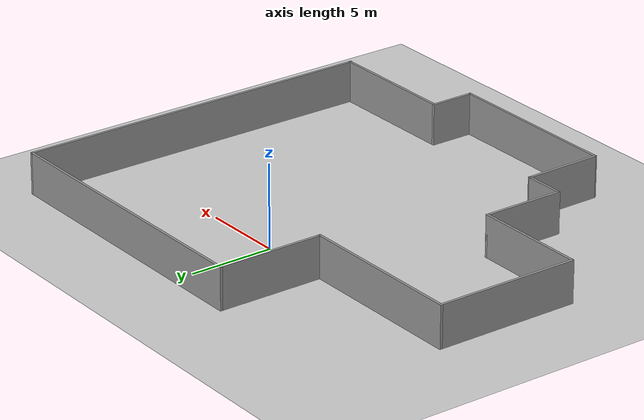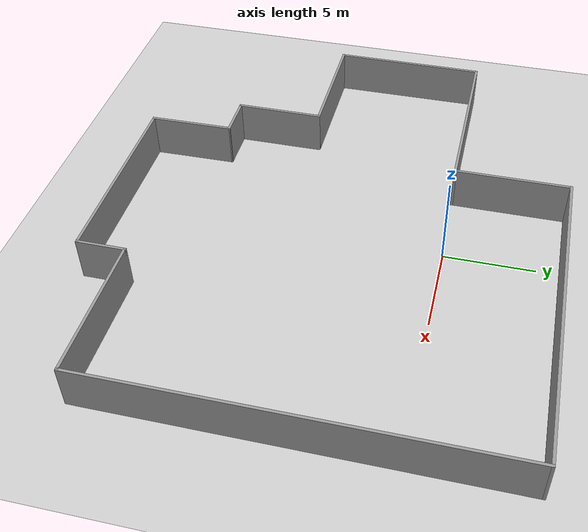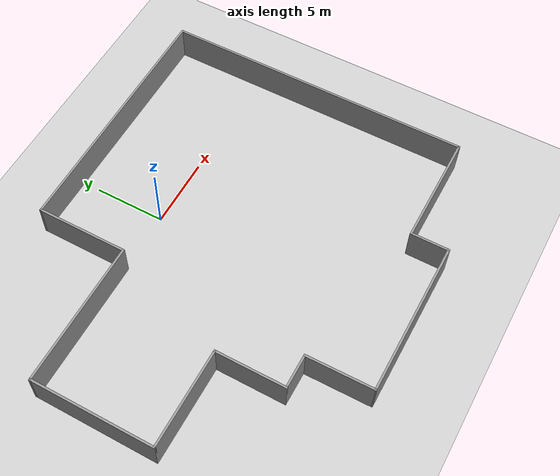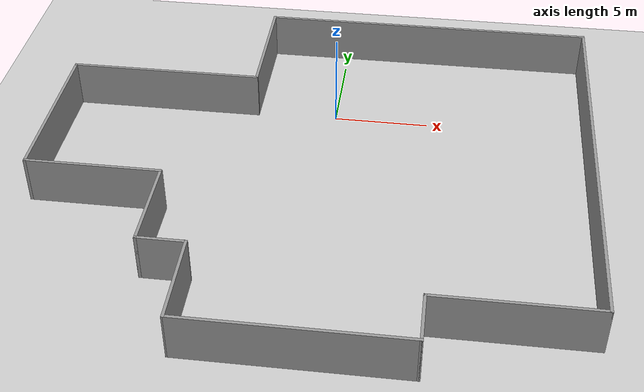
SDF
<sdf version="1.7">
 <world name="default">
  <light name="sun" type="directional">
   <pose>0 0 10 0 -0 0</pose>
   <diffuse>0.8 0.8 0.8 1</diffuse>
   <specular>0.2 0.2 0.2 1</specular>
   <attenuation>
    <range>1000</range>
    <constant>0.9</constant>
    <linear>0.01</linear>
    <quadratic>0.001</quadratic>
   </attenuation>
   <direction>-0.5 0.1 -0.9</direction>
   <spot><inner_angle>0</inner_angle><outer_angle>0</outer_angle><falloff>0</falloff></spot>
  </light>
  <model name="ground_plane">
   <static>1</static>
   <link name="link">
    <collision name="collision">
     <geometry><plane><normal>0 0 1</normal><size>100 100</size></plane></geometry>
     <surface>
      <contact><collide_bitmask>65535</collide_bitmask></contact>
      <friction><ode><mu>100</mu><mu2>50</mu2></ode></friction>
     </surface>
    </collision>
    <visual name="visual">
     <cast_shadows>0</cast_shadows>
     <geometry><plane><normal>0 0 1</normal><size>100 100</size></plane></geometry>
     <material>
      <script><uri>file://media/materials/scripts/gazebo.material</uri><name>Gazebo/Grey</name></script>
     </material>
    </visual>
   </link>
  </model>
  <gravity>0 0 -9.8</gravity>
  <magnetic_field>6e-06 2.3e-05 -4.2e-05</magnetic_field>
  <atmosphere type="adiabatic"/>
  <physics type="ode">
   <max_step_size>0.001</max_step_size>
   <real_time_factor>1</real_time_factor>
   <real_time_update_rate>1000</real_time_update_rate>
  </physics>
  <scene><ambient>0.4 0.4 0.4 1</ambient><background>0.7 0.7 0.7 1</background><shadows>1</shadows></scene>
  <spherical_coordinates>
   <surface_model>EARTH_WGS84</surface_model>
   <latitude_deg>0</latitude_deg>
   <longitude_deg>0</longitude_deg>
   <elevation>0</elevation>
   <heading_deg>0</heading_deg>
  </spherical_coordinates>
  <model name="Map_1">
   <pose>-0.484688 -5.96064 0 0 -0 0</pose>
   <link name="Wall_10">
    <collision name="Wall_10_Collision">
     <geometry><box><size>11 0.15 2.5</size></box></geometry>
     <pose>0 0 1.25 0 -0 0</pose>
    </collision>
    <visual name="Wall_10_Visual">
     <pose>0 0 1.25 0 -0 0</pose>
     <geometry><box><size>11 0.15 2.5</size></box></geometry>
     <material>
      <script><uri>file://media/materials/scripts/gazebo.material</uri><name>Gazebo/Grey</name></script>
      <ambient>1 1 1 1</ambient>
     </material>
     <meta><layer>0</layer></meta>
    </visual>
    <pose>0.7 -12.2246 0 0 -0 0</pose>
   </link>
   <link name="Wall_11">
    <collision name="Wall_11_Collision">
     <geometry><box><size>2.75 0.15 2.5</size></box></geometry>
     <pose>0 0 1.25 0 -0 0</pose>
    </collision>
    <visual name="Wall_11_Visual">
     <pose>0 0 1.25 0 -0 0</pose>
     <geometry><box><size>2.75 0.15 2.5</size></box></geometry>
     <material>
      <script><uri>file://media/materials/scripts/gazebo.material</uri><name>Gazebo/Grey</name></script>
      <ambient>1 1 1 1</ambient>
     </material>
     <meta><layer>0</layer></meta>
    </visual>
    <pose>6.125 -10.9246 0 0 -0 1.5708</pose>
   </link>
   <link name="Wall_12">
    <collision name="Wall_12_Collision">
     <geometry><box><size>8 0.15 2.5</size></box></geometry>
     <pose>0 0 1.25 0 -0 0</pose>
    </collision>
    <visual name="Wall_12_Visual">
     <pose>0 0 1.25 0 -0 0</pose>
     <geometry><box><size>8 0.15 2.5</size></box></geometry>
     <material>
      <script><uri>file://media/materials/scripts/gazebo.material</uri><name>Gazebo/Grey</name></script>
      <ambient>1 1 1 1</ambient>
     </material>
     <meta><layer>0</layer></meta>
    </visual>
    <pose>10.05 -9.6246 0 0 -0 0</pose>
   </link>
   <link name="Wall_13">
    <collision name="Wall_13_Collision">
     <geometry><box><size>22 0.15 2.5</size></box></geometry>
     <pose>0 0 1.25 0 -0 0</pose>
    </collision>
    <visual name="Wall_13_Visual">
     <pose>0 0 1.25 0 -0 0</pose>
     <geometry><box><size>22 0.15 2.5</size></box></geometry>
     <material>
      <script><uri>file://media/materials/scripts/gazebo.material</uri><name>Gazebo/Grey</name></script>
      <ambient>1 1 1 1</ambient>
     </material>
     <meta><layer>0</layer></meta>
    </visual>
    <pose>13.975 1.3004 0 0 -0 1.5708</pose>
   </link>
   <link name="Wall_14">
    <collision name="Wall_14_Collision">
     <geometry><box><size>18 0.15 2.5</size></box></geometry>
     <pose>0 0 1.25 0 -0 0</pose>
    </collision>
    <visual name="Wall_14_Visual">
     <pose>0 0 1.25 0 -0 0</pose>
     <geometry><box><size>18 0.15 2.5</size></box></geometry>
     <material>
      <script><uri>file://media/materials/scripts/gazebo.material</uri><name>Gazebo/Grey</name></script>
      <ambient>1 1 1 1</ambient>
     </material>
     <meta><layer>0</layer></meta>
    </visual>
    <pose>5.05 12.2254 0 0 -0 3.14159</pose>
   </link>
   <link name="Wall_15">
    <collision name="Wall_15_Collision">
     <geometry><box><size>6.5 0.15 2.5</size></box></geometry>
     <pose>0 0 1.25 0 -0 0</pose>
    </collision>
    <visual name="Wall_15_Visual">
     <pose>0 0 1.25 0 -0 0</pose>
     <geometry><box><size>6.5 0.15 2.5</size></box></geometry>
     <material>
      <script><uri>file://media/materials/scripts/gazebo.material</uri><name>Gazebo/Grey</name></script>
      <ambient>1 1 1 1</ambient>
     </material>
     <meta><layer>0</layer></meta>
    </visual>
    <pose>-3.875 9.0504 0 0 -0 -1.5708</pose>
   </link>
   <link name="Wall_16">
    <collision name="Wall_16_Collision">
     <geometry><box><size>10.25 0.15 2.5</size></box></geometry>
     <pose>0 0 1.25 0 -0 0</pose>
    </collision>
    <visual name="Wall_16_Visual">
     <pose>0 0 1.25 0 -0 0</pose>
     <geometry><box><size>10.25 0.15 2.5</size></box></geometry>
     <material>
      <script><uri>file://media/materials/scripts/gazebo.material</uri><name>Gazebo/Grey</name></script>
      <ambient>1 1 1 1</ambient>
     </material>
     <meta><layer>0</layer></meta>
    </visual>
    <pose>-8.925 5.8754 0 0 -0 3.14159</pose>
   </link>
   <link name="Wall_17">
    <collision name="Wall_17_Collision">
     <geometry><box><size>8.75 0.15 2.5</size></box></geometry>
     <pose>0 0 1.25 0 -0 0</pose>
    </collision>
    <visual name="Wall_17_Visual">
     <pose>0 0 1.25 0 -0 0</pose>
     <geometry><box><size>8.75 0.15 2.5</size></box></geometry>
     <material>
      <script><uri>file://media/materials/scripts/gazebo.material</uri><name>Gazebo/Grey</name></script>
      <ambient>1 1 1 1</ambient>
     </material>
     <meta><layer>0</layer></meta>
    </visual>
    <pose>-13.975 1.5754 0 0 -0 -1.5708</pose>
   </link>
   <link name="Wall_18">
    <collision name="Wall_18_Collision">
     <geometry><box><size>7 0.15 2.5</size></box></geometry>
     <pose>0 0 1.25 0 -0 0</pose>
    </collision>
    <visual name="Wall_18_Visual">
     <pose>0 0 1.25 0 -0 0</pose>
     <geometry><box><size>7 0.15 2.5</size></box></geometry>
     <material>
      <script><uri>file://media/materials/scripts/gazebo.material</uri><name>Gazebo/Grey</name></script>
      <ambient>1 1 1 1</ambient>
     </material>
     <meta><layer>0</layer></meta>
    </visual>
    <pose>-10.55 -2.7246 0 0 -0 0</pose>
   </link>
   <link name="Wall_19">
    <collision name="Wall_19_Collision">
     <geometry><box><size>5 0.15 2.5</size></box></geometry>
     <pose>0 0 1.25 0 -0 0</pose>
    </collision>
    <visual name="Wall_19_Visual">
     <pose>0 0 1.25 0 -0 0</pose>
     <geometry><box><size>5 0.15 2.5</size></box></geometry>
     <material>
      <script><uri>file://media/materials/scripts/gazebo.material</uri><name>Gazebo/Grey</name></script>
      <ambient>1 1 1 1</ambient>
     </material>
     <meta><layer>0</layer></meta>
    </visual>
    <pose>-7.125 -5.1496 0 0 -0 -1.5708</pose>
   </link>
   <link name="Wall_20">
    <collision name="Wall_20_Collision">
     <geometry><box><size>2.5 0.15 2.5</size></box></geometry>
     <pose>0 0 1.25 0 -0 0</pose>
    </collision>
    <visual name="Wall_20_Visual">
     <pose>0 0 1.25 0 -0 0</pose>
     <geometry><box><size>2.5 0.15 2.5</size></box></geometry>
     <material>
      <script><uri>file://media/materials/scripts/gazebo.material</uri><name>Gazebo/Grey</name></script>
      <ambient>1 1 1 1</ambient>
     </material>
     <meta><layer>0</layer></meta>
    </visual>
    <pose>-5.95 -7.5746 0 0 -0 0</pose>
   </link>
   <link name="Wall_21">
    <collision name="Wall_21_Collision">
     <geometry><box><size>4.80027 0.15 2.5</size></box></geometry>
     <pose>0 0 1.25 0 -0 0</pose>
    </collision>
    <visual name="Wall_21_Visual">
     <pose>0 0 1.25 0 -0 0</pose>
     <geometry><box><size>4.80027 0.15 2.5</size></box></geometry>
     <material>
      <script><uri>file://media/materials/scripts/gazebo.material</uri><name>Gazebo/Grey</name></script>
      <ambient>1 1 1 1</ambient>
     </material>
     <meta><layer>0</layer></meta>
    </visual>
    <pose>-4.75 -9.8996 0 0 -0 -1.56004</pose>
   </link>
   <static>1</static>
  </model>
 </world>
</sdf>
